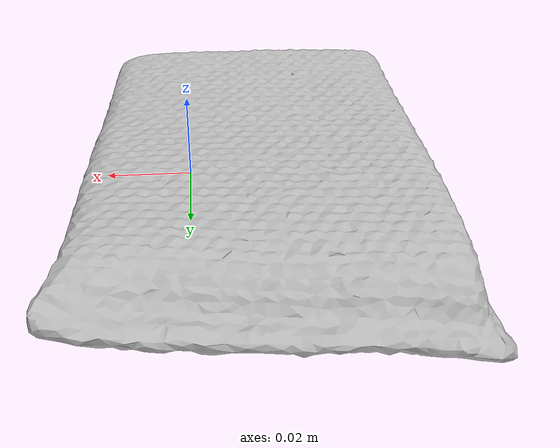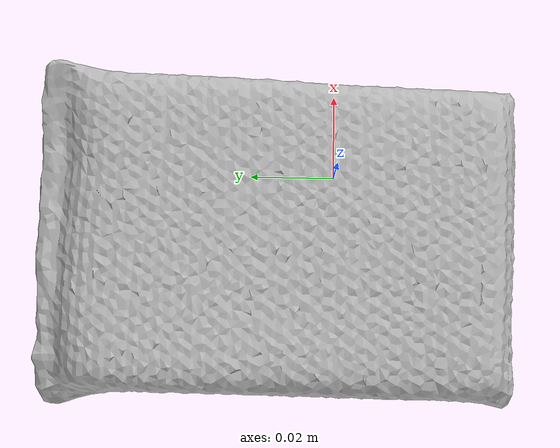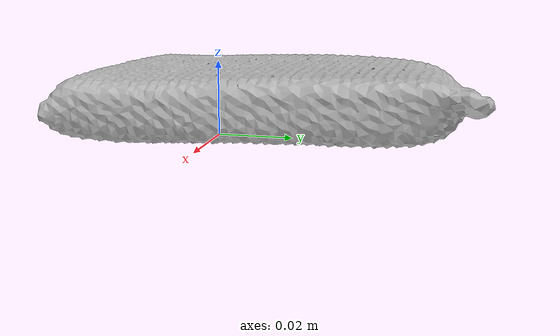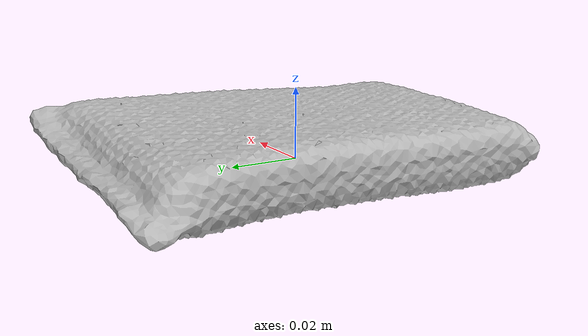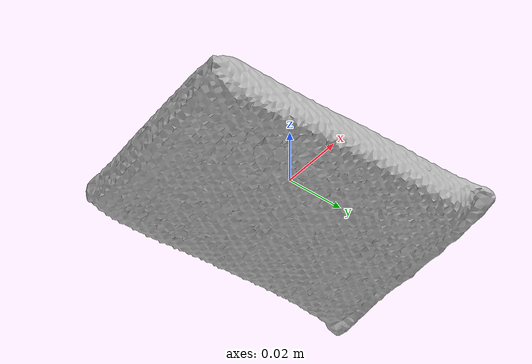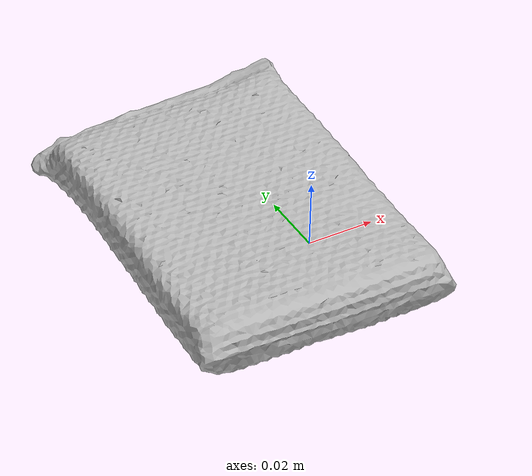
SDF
<?xml version='1.0'?>
<sdf version="1.4">
  <model name="sponge">
    <static>false</static>
    <link name="link">
      <inertial>
        <pose>-0.015842356573766914 0.011520562220217976 0.009372525080597043 -0.982493408670207 1.5523706661387422 0.5776306754619936</pose>
        <mass>0.00011574257606853668</mass>
        <inertia>
          <ixx>1.479069593568663e-07</ixx>
          <ixy>1.7613067875361302e-24</ixy>
          <ixz>-9.588617036205246e-24</ixz>
          <iyy>1.0220649167865074e-07</iyy>
          <iyz>-3.17833321303784e-25</iyz>
          <izz>5.0400662180254376e-08</izz>
        </inertia>
      </inertial>
      <collision name="collision">
        <geometry>
          <mesh>
            <!-- Use a downsampled mesh for collisions -->
            <uri>model://026_sponge/google_16k/026_sponge.obj</uri>
            </mesh>
        </geometry>
        <surface>
          <friction>
            <ode>
              <mu>0.9</mu>
              <mu2>0.9</mu2>
            </ode>
          </friction>
          <contact>
            <ode>
              <kp>1000000000000.0</kp>
              <kd>1</kd>
              <min_depth>0.0001</min_depth>
              <max_vel>0.01</max_vel>
            </ode>
          </contact>
          <bounce>
            <restitution_coefficient>0.1</restitution_coefficient>
            <threshold>1000.0</threshold>
          </bounce>
        </surface>
      </collision>
      <visual name="visual">
        <geometry>
          <mesh>
            <uri>model://026_sponge/google_16k/026_sponge.dae</uri>
            </mesh>
        </geometry>
      </visual>
    </link>
  </model>
</sdf>
